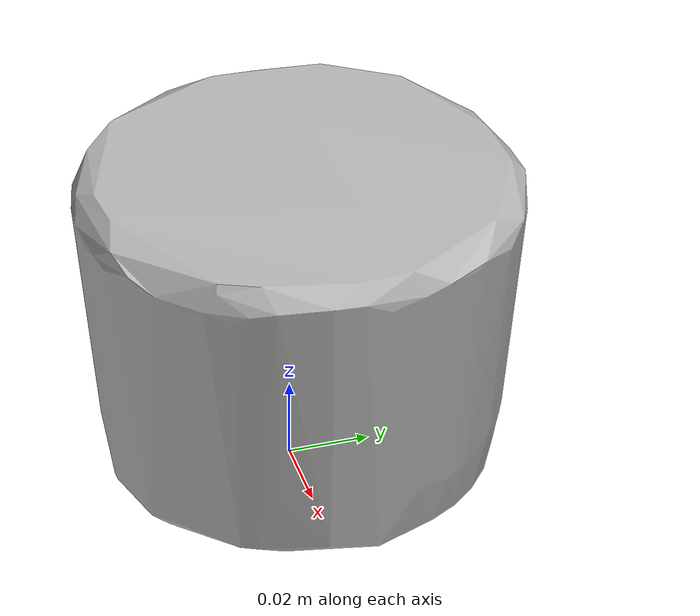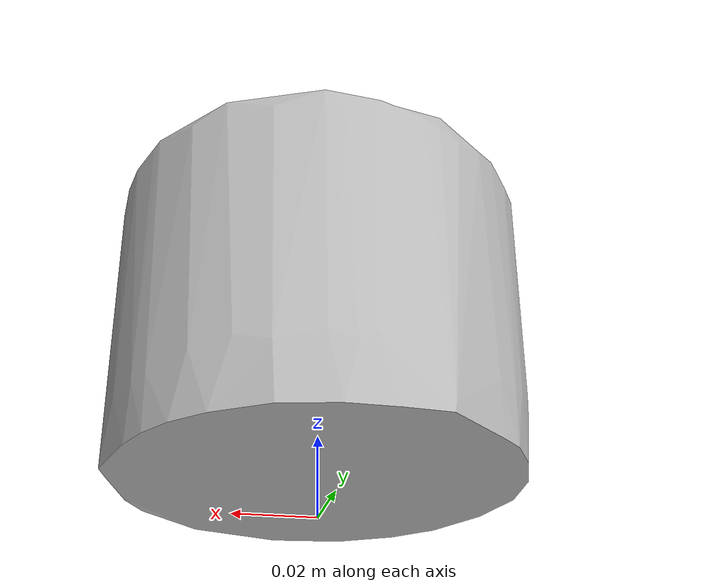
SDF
<?xml version='1.0'?>
<sdf version="1.4">
  <model name="campbells_chicken_noodle_soup">
    <static>false</static>
    <link name="link">
      <inertial>
        <pose>0.0005871774786947382 0.0024847103184962474 0.04475707636872919 0.32062052204007835 -1.5585202956539241 -1.4248877785070075</pose>
        <mass>0.06058835323001838</mass>
        <inertia>
          <ixx>7.775305373835693e-05</ixx>
          <ixy>1.047026956600585e-21</ixy>
          <ixz>1.5141318280274978e-22</ixz>
          <iyy>6.717828503623368e-05</iyy>
          <iyz>-2.066176723233943e-22</iyz>
          <izz>6.686435940947767e-05</izz>
        </inertia>
      </inertial>
      <collision name="collision">
        <geometry>
          <mesh>
            <!-- Use a downsampled mesh for collisions -->
            <uri>model:///campbells_chicken_noodle_soup/campbells_chicken_noodle_soup_250_collision.obj</uri>
	        </mesh>
        </geometry>
        <surface>
      </surface>
      </collision>
      <visual name="visual">
        <geometry>
          <mesh>
            <uri>model:///campbells_chicken_noodle_soup/optimized_tsdf_texture_mapped_mesh.obj</uri>
	        </mesh>
        </geometry>
        <material>
          <script>
            <uri>model:///campbells_chicken_noodle_soup/campbells_chicken_noodle_soup.material</uri>
            <name>campbells_chicken_noodle_soup</name>
          </script>
        </material>
      </visual>
    </link>
  </model>
</sdf>
